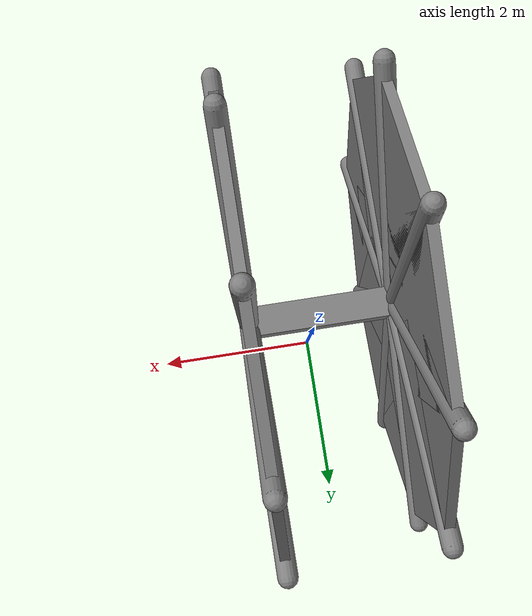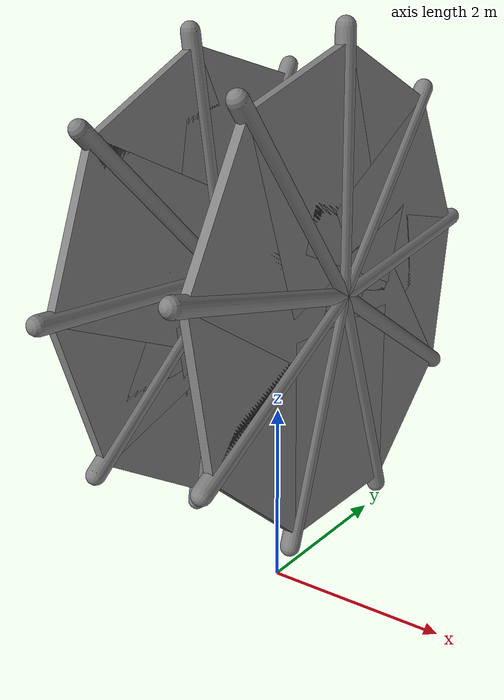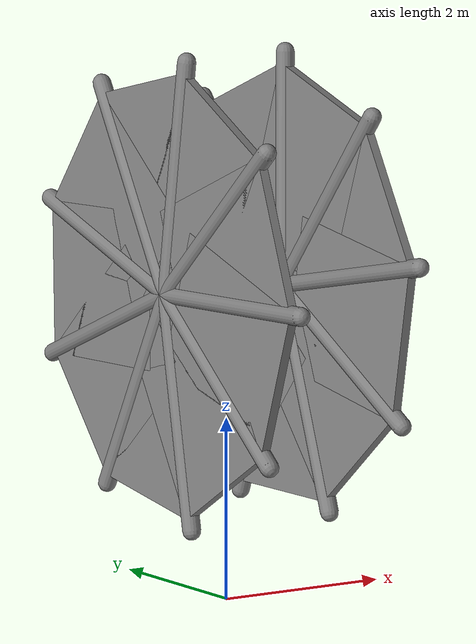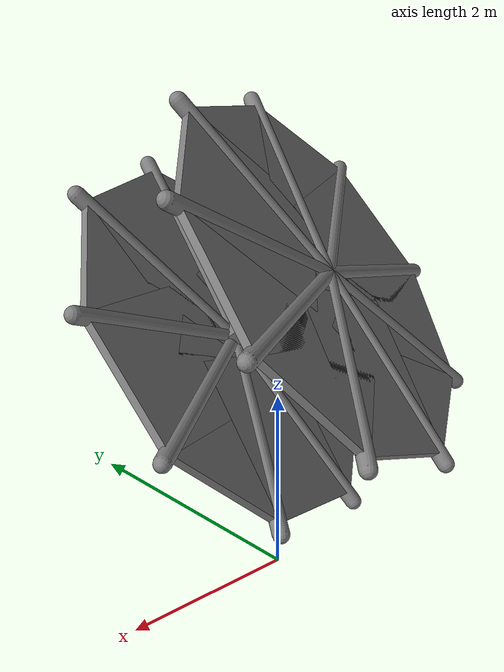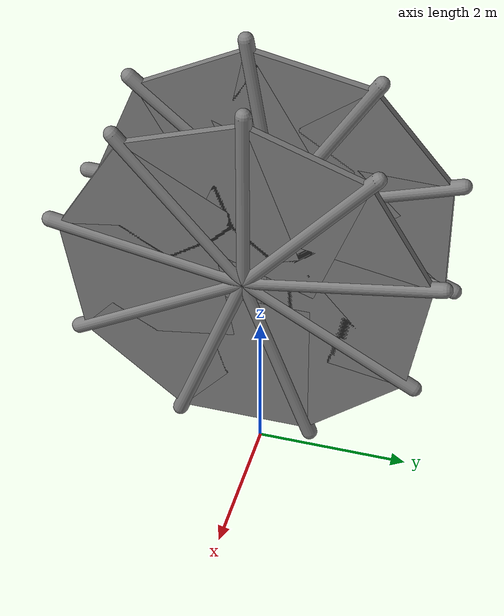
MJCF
<mujoco model="wheel">

    <include file="./common/skybox.xml"/>
    <include file="./common/visual.xml"/>
    <include file="./common/materials.xml"/>

    <compiler autolimits="true"/>

    <worldbody>
        <body name="main" pos="0 0 3.4">
            <geom type="box" size="0.76 0.15 0.15"/>
            <joint name="axleZAxis" type="slide" axis="0 0 1"/>
            <joint name="axleYAxis" type="slide" axis="0 1 0"/>
            <joint type="hinge" axis="1 0 0"/>
            <site name="axlesite" type="sphere" size="0.01" pos="0 0 0"/>

            <body axisangle="1 0 0 0">
                <geom type="capsule" fromto="0.76 0 0  0.76 0 2.54" size="0.1"/>
            </body>
            <body axisangle="1 0 0 40">
                <geom type="capsule" fromto="0.76 0 0  0.76 0 2.54" size="0.1"/>
            </body>
            <body axisangle="1 0 0 80">
                <geom type="capsule" fromto="0.76 0 0  0.76 0 2.54" size="0.1"/>
            </body>
            <body axisangle="1 0 0 120">
                <geom type="capsule" fromto="0.76 0 0  0.76 0 2.54" size="0.1"/>
            </body>
            <body axisangle="1 0 0 160">
                <geom type="capsule" fromto="0.76 0 0  0.76 0 2.54" size="0.1"/>
            </body>
            <body axisangle="1 0 0 200">
                <geom type="capsule" fromto="0.76 0 0  0.76 0 2.54" size="0.1"/>
            </body>
            <body axisangle="1 0 0 240">
                <geom type="capsule" fromto="0.76 0 0  0.76 0 2.54" size="0.1"/>
            </body>
            <body axisangle="1 0 0 280">
                <geom type="capsule" fromto="0.76 0 0  0.76 0 2.54" size="0.1"/>
            </body>
            <body axisangle="1 0 0 320">
                <geom type="capsule" fromto="0.76 0 0  0.76 0 2.54" size="0.1"/>
            </body>

            <body axisangle="1 0 0 20">
                <geom type="box" pos="0.76 0 1.27" size="0.05 0.85 1"/>
            </body>
            <body axisangle="1 0 0 60">
                <geom type="box" pos="0.76 0 1.27" size="0.05 0.85 1"/>
            </body>
            <body axisangle="1 0 0 100">
                <geom type="box" pos="0.76 0 1.27" size="0.05 0.85 1"/>
            </body>
            <body axisangle="1 0 0 140">
                <geom type="box" pos="0.76 0 1.27" size="0.05 0.85 1"/>
            </body>
            <body axisangle="1 0 0 180">
                <geom type="box" pos="0.76 0 1.27" size="0.05 0.85 1"/>
            </body>
            <body axisangle="1 0 0 220">
                <geom type="box" pos="0.76 0 1.27" size="0.05 0.85 1"/>
            </body>
            <body axisangle="1 0 0 260">
                <geom type="box" pos="0.76 0 1.27" size="0.05 0.85 1"/>
            </body>
            <body axisangle="1 0 0 300">
                <geom type="box" pos="0.76 0 1.27" size="0.05 0.85 1"/>
            </body>
            <body axisangle="1 0 0 340">
                <geom type="box" pos="0.76 0 1.27" size="0.05 0.85 1"/>
            </body>

            <body axisangle="1 0 0 9">
                <geom type="capsule" fromto="-0.76 0 0  -0.76 0 2.54" size="0.1"/>
            </body>
            <body axisangle="1 0 0 49">
                <geom type="capsule" fromto="-0.76 0 0  -0.76 0 2.54" size="0.1"/>
            </body>
            <body axisangle="1 0 0 89">
                <geom type="capsule" fromto="-0.76 0 0  -0.76 0 2.54" size="0.1"/>
            </body>
            <body axisangle="1 0 0 129">
                <geom type="capsule" fromto="-0.76 0 0  -0.76 0 2.54" size="0.1"/>
            </body>
            <body axisangle="1 0 0 169">
                <geom type="capsule" fromto="-0.76 0 0  -0.76 0 2.54" size="0.1"/>
            </body>
            <body axisangle="1 0 0 209">
                <geom type="capsule" fromto="-0.76 0 0  -0.76 0 2.54" size="0.1"/>
            </body>
            <body axisangle="1 0 0 249">
                <geom type="capsule" fromto="-0.76 0 0  -0.76 0 2.54" size="0.1"/>
            </body>
            <body axisangle="1 0 0 289">
                <geom type="capsule" fromto="-0.76 0 0  -0.76 0 2.54" size="0.1"/>
            </body>
            <body axisangle="1 0 0 329">
                <geom type="capsule" fromto="-0.76 0 0  -0.76 0 2.54" size="0.1"/>
            </body>

            <body axisangle="1 0 0 29">
                <geom type="box" pos="-0.76 0 1.27" size="0.05 0.85 1"/>
            </body>
            <body axisangle="1 0 0 69">
                <geom type="box" pos="-0.76 0 1.27" size="0.05 0.85 1"/>
            </body>
            <body axisangle="1 0 0 109">
                <geom type="box" pos="-0.76 0 1.27" size="0.05 0.85 1"/>
            </body>
            <body axisangle="1 0 0 149">
                <geom type="box" pos="-0.76 0 1.27" size="0.05 0.85 1"/>
            </body>
            <body axisangle="1 0 0 189">
                <geom type="box" pos="-0.76 0 1.27" size="0.05 0.85 1"/>
            </body>
            <body axisangle="1 0 0 229">
                <geom type="box" pos="-0.76 0 1.27" size="0.05 0.85 1"/>
            </body>
            <body axisangle="1 0 0 269">
                <geom type="box" pos="-0.76 0 1.27" size="0.05 0.85 1"/>
            </body>
            <body axisangle="1 0 0 309">
                <geom type="box" pos="-0.76 0 1.27" size="0.05 0.85 1"/>
            </body>
            <body axisangle="1 0 0 349">
                <geom type="box" pos="-0.76 0 1.27" size="0.05 0.85 1"/>
            </body>

        </body>

    </worldbody>

    <sensor>
        <velocimeter name="axle_velocimeter" site="axlesite"/>
    </sensor>

</mujoco>

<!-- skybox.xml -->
<mujoco>
    <asset>
        <texture name="skybox" type="skybox" builtin="gradient" rgb1=".4 .6 .8" rgb2="0 0 0"
                 width="800" height="800" mark="random" markrgb="1 1 1"/>
    </asset>
  </mujoco>

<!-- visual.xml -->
<mujoco>
    <visual>
      <headlight ambient=".4 .4 .4" diffuse=".8 .8 .8" specular="0.1 0.1 0.1"/>
      <map znear=".01"/>
      <quality shadowsize="2048"/>
    </visual>
  </mujoco>

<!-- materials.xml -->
<!--
Common textures, colors and materials to be used throughout this suite. Some
materials such as xxx_highlight are activated on occurence of certain events,
for example receiving a positive reward.
-->
<mujoco>
    <asset>
      <texture name="grid" type="2d" builtin="checker" rgb1=".1 .2 .3" rgb2=".2 .3 .4" width="300" height="300" mark="edge" markrgb=".2 .3 .4"/>
      <material name="grid" texture="grid" texrepeat="1 1" texuniform="true" reflectance=".2"/>
      <material name="self" rgba=".7 .5 .3 1"/>
      <material name="self_default" rgba=".7 .5 .3 1"/>
      <material name="self_highlight" rgba="0 .5 .3 1"/>
      <material name="effector" rgba=".7 .4 .2 1"/>
      <material name="effector_default" rgba=".7 .4 .2 1"/>
      <material name="effector_highlight" rgba="0 .5 .3 1"/>
      <material name="decoration" rgba=".3 .5 .7 1"/>
      <material name="eye" rgba="0 .2 1 1"/>
      <material name="target" rgba=".6 .3 .3 1"/>
      <material name="target_default" rgba=".6 .3 .3 1"/>
      <material name="target_highlight" rgba=".6 .3 .3 .4"/>
      <material name="site" rgba=".5 .5 .5 .3"/>
    </asset>
  </mujoco>
